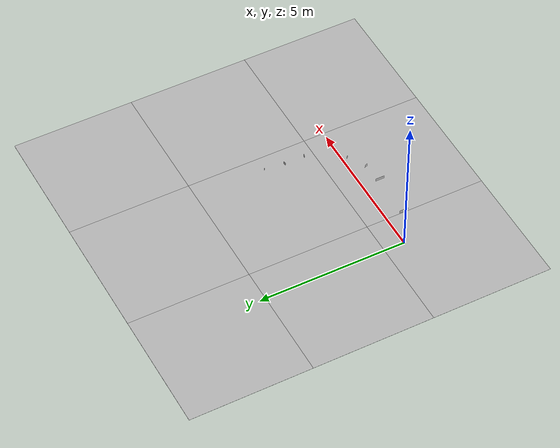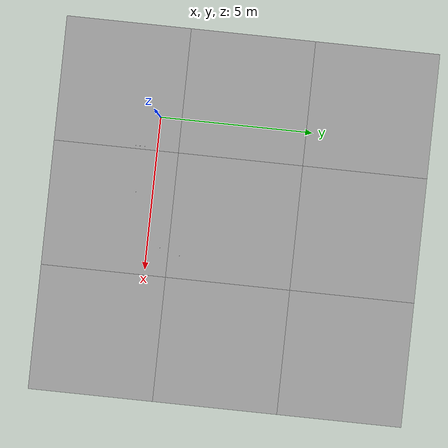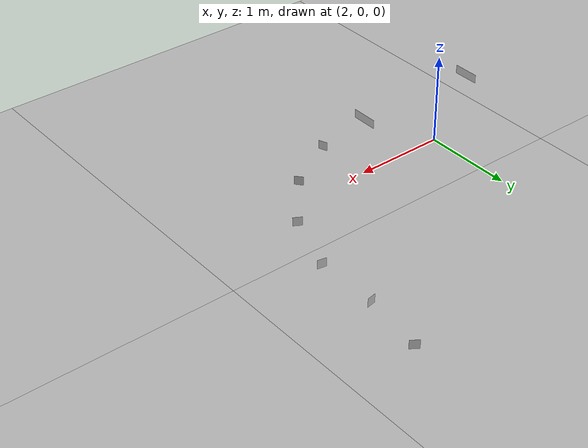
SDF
<sdf version='1.6'><world name='default'>
    <light name='sun_light' type='directional'>
      <pose frame=''>0 0 10 0 -0 0</pose>
      <diffuse>0.5 0.5 0.5 1</diffuse>
      <specular>0.1 0.1 0.1 1</specular>
      <direction>0.1 0.1 -0.9</direction>
      <attenuation>
        <range>20</range>
        <constant>0.5</constant>
        <linear>0.01</linear>
        <quadratic>0.001</quadratic>
      </attenuation>
      <cast_shadows>1</cast_shadows>
    </light>

    <model name='Tile/0-0'>
      <static>1</static>
      <link name='link'>
        <collision name='collision'>
          <geometry>
            <plane>
              <normal>0 0 1</normal>
              <size>4.096 4.096</size>
            </plane>
          </geometry>
          <surface>
            <friction>
              <ode>
                <mu>100</mu>
                <mu2>50</mu2>
              </ode>
              <torsional>
                <ode/>
              </torsional>
            </friction>
            <contact>
              <ode/>
            </contact>
            <bounce/>
          </surface>
          <max_contacts>10</max_contacts>
        </collision>
        <visual name='visual'>
          <cast_shadows>0</cast_shadows>
          <geometry>
            <plane>
              <normal>0 0 1</normal>
              <size>4.096 4.096</size>
            </plane>
          </geometry>
          <material>
            <script>
              <uri>file://materials/scripts</uri>
              <uri>file://materials/textures</uri>
              <name>Tile/d2a0822d2df9434b2a10c1df4b51959f07967b7722c4dc5c94304e16f4e1de29</name>
            </script>
          </material>
        </visual>
        <self_collide>0</self_collide>
        <enable_wind>0</enable_wind>
        <kinematic>0</kinematic>
      </link>
      <pose frame=''>-0.952 -1.3519999999999999 0 0 -0 0</pose>
    </model>

    <model name='Tile/0-1'>
      <static>1</static>
      <link name='link'>
        <collision name='collision'>
          <geometry>
            <plane>
              <normal>0 0 1</normal>
              <size>4.096 4.096</size>
            </plane>
          </geometry>
          <surface>
            <friction>
              <ode>
                <mu>100</mu>
                <mu2>50</mu2>
              </ode>
              <torsional>
                <ode/>
              </torsional>
            </friction>
            <contact>
              <ode/>
            </contact>
            <bounce/>
          </surface>
          <max_contacts>10</max_contacts>
        </collision>
        <visual name='visual'>
          <cast_shadows>0</cast_shadows>
          <geometry>
            <plane>
              <normal>0 0 1</normal>
              <size>4.096 4.096</size>
            </plane>
          </geometry>
          <material>
            <script>
              <uri>file://materials/scripts</uri>
              <uri>file://materials/textures</uri>
              <name>Tile/5eab350b8220ac9944dbdfa4ac3288c7c17e24c3bf5df0dfcf6173d64dae00a1</name>
            </script>
          </material>
        </visual>
        <self_collide>0</self_collide>
        <enable_wind>0</enable_wind>
        <kinematic>0</kinematic>
      </link>
      <pose frame=''>-0.952 2.744 0 0 -0 0</pose>
    </model>

    <model name='Tile/0-2'>
      <static>1</static>
      <link name='link'>
        <collision name='collision'>
          <geometry>
            <plane>
              <normal>0 0 1</normal>
              <size>4.096 4.096</size>
            </plane>
          </geometry>
          <surface>
            <friction>
              <ode>
                <mu>100</mu>
                <mu2>50</mu2>
              </ode>
              <torsional>
                <ode/>
              </torsional>
            </friction>
            <contact>
              <ode/>
            </contact>
            <bounce/>
          </surface>
          <max_contacts>10</max_contacts>
        </collision>
        <visual name='visual'>
          <cast_shadows>0</cast_shadows>
          <geometry>
            <plane>
              <normal>0 0 1</normal>
              <size>4.096 4.096</size>
            </plane>
          </geometry>
          <material>
            <script>
              <uri>file://materials/scripts</uri>
              <uri>file://materials/textures</uri>
              <name>Tile/5eab350b8220ac9944dbdfa4ac3288c7c17e24c3bf5df0dfcf6173d64dae00a1</name>
            </script>
          </material>
        </visual>
        <self_collide>0</self_collide>
        <enable_wind>0</enable_wind>
        <kinematic>0</kinematic>
      </link>
      <pose frame=''>-0.952 6.84 0 0 -0 0</pose>
    </model>

    <model name='Tile/1-0'>
      <static>1</static>
      <link name='link'>
        <collision name='collision'>
          <geometry>
            <plane>
              <normal>0 0 1</normal>
              <size>4.096 4.096</size>
            </plane>
          </geometry>
          <surface>
            <friction>
              <ode>
                <mu>100</mu>
                <mu2>50</mu2>
              </ode>
              <torsional>
                <ode/>
              </torsional>
            </friction>
            <contact>
              <ode/>
            </contact>
            <bounce/>
          </surface>
          <max_contacts>10</max_contacts>
        </collision>
        <visual name='visual'>
          <cast_shadows>0</cast_shadows>
          <geometry>
            <plane>
              <normal>0 0 1</normal>
              <size>4.096 4.096</size>
            </plane>
          </geometry>
          <material>
            <script>
              <uri>file://materials/scripts</uri>
              <uri>file://materials/textures</uri>
              <name>Tile/eee40ccea9311317126f079acab8a58f75d18f4e68f1ac2bab7b07feca064cc9</name>
            </script>
          </material>
        </visual>
        <self_collide>0</self_collide>
        <enable_wind>0</enable_wind>
        <kinematic>0</kinematic>
      </link>
      <pose frame=''>3.144 -1.3519999999999999 0 0 -0 0</pose>
    </model>

    <model name='Tile/1-1'>
      <static>1</static>
      <link name='link'>
        <collision name='collision'>
          <geometry>
            <plane>
              <normal>0 0 1</normal>
              <size>4.096 4.096</size>
            </plane>
          </geometry>
          <surface>
            <friction>
              <ode>
                <mu>100</mu>
                <mu2>50</mu2>
              </ode>
              <torsional>
                <ode/>
              </torsional>
            </friction>
            <contact>
              <ode/>
            </contact>
            <bounce/>
          </surface>
          <max_contacts>10</max_contacts>
        </collision>
        <visual name='visual'>
          <cast_shadows>0</cast_shadows>
          <geometry>
            <plane>
              <normal>0 0 1</normal>
              <size>4.096 4.096</size>
            </plane>
          </geometry>
          <material>
            <script>
              <uri>file://materials/scripts</uri>
              <uri>file://materials/textures</uri>
              <name>Tile/4f707bda1197f9095f4ef66584a218cdf2382df851c6f356207d1f3f003e593e</name>
            </script>
          </material>
        </visual>
        <self_collide>0</self_collide>
        <enable_wind>0</enable_wind>
        <kinematic>0</kinematic>
      </link>
      <pose frame=''>3.144 2.744 0 0 -0 0</pose>
    </model>

    <model name='Tile/1-2'>
      <static>1</static>
      <link name='link'>
        <collision name='collision'>
          <geometry>
            <plane>
              <normal>0 0 1</normal>
              <size>4.096 4.096</size>
            </plane>
          </geometry>
          <surface>
            <friction>
              <ode>
                <mu>100</mu>
                <mu2>50</mu2>
              </ode>
              <torsional>
                <ode/>
              </torsional>
            </friction>
            <contact>
              <ode/>
            </contact>
            <bounce/>
          </surface>
          <max_contacts>10</max_contacts>
        </collision>
        <visual name='visual'>
          <cast_shadows>0</cast_shadows>
          <geometry>
            <plane>
              <normal>0 0 1</normal>
              <size>4.096 4.096</size>
            </plane>
          </geometry>
          <material>
            <script>
              <uri>file://materials/scripts</uri>
              <uri>file://materials/textures</uri>
              <name>Tile/819be90ca5ff87f2ae710774ee83738a207ad9c96d62bff58fc927d57501d2e7</name>
            </script>
          </material>
        </visual>
        <self_collide>0</self_collide>
        <enable_wind>0</enable_wind>
        <kinematic>0</kinematic>
      </link>
      <pose frame=''>3.144 6.84 0 0 -0 0</pose>
    </model>

    <model name='Tile/2-0'>
      <static>1</static>
      <link name='link'>
        <collision name='collision'>
          <geometry>
            <plane>
              <normal>0 0 1</normal>
              <size>4.096 4.096</size>
            </plane>
          </geometry>
          <surface>
            <friction>
              <ode>
                <mu>100</mu>
                <mu2>50</mu2>
              </ode>
              <torsional>
                <ode/>
              </torsional>
            </friction>
            <contact>
              <ode/>
            </contact>
            <bounce/>
          </surface>
          <max_contacts>10</max_contacts>
        </collision>
        <visual name='visual'>
          <cast_shadows>0</cast_shadows>
          <geometry>
            <plane>
              <normal>0 0 1</normal>
              <size>4.096 4.096</size>
            </plane>
          </geometry>
          <material>
            <script>
              <uri>file://materials/scripts</uri>
              <uri>file://materials/textures</uri>
              <name>Tile/5eab350b8220ac9944dbdfa4ac3288c7c17e24c3bf5df0dfcf6173d64dae00a1</name>
            </script>
          </material>
        </visual>
        <self_collide>0</self_collide>
        <enable_wind>0</enable_wind>
        <kinematic>0</kinematic>
      </link>
      <pose frame=''>7.24 -1.3519999999999999 0 0 -0 0</pose>
    </model>

    <model name='Tile/2-1'>
      <static>1</static>
      <link name='link'>
        <collision name='collision'>
          <geometry>
            <plane>
              <normal>0 0 1</normal>
              <size>4.096 4.096</size>
            </plane>
          </geometry>
          <surface>
            <friction>
              <ode>
                <mu>100</mu>
                <mu2>50</mu2>
              </ode>
              <torsional>
                <ode/>
              </torsional>
            </friction>
            <contact>
              <ode/>
            </contact>
            <bounce/>
          </surface>
          <max_contacts>10</max_contacts>
        </collision>
        <visual name='visual'>
          <cast_shadows>0</cast_shadows>
          <geometry>
            <plane>
              <normal>0 0 1</normal>
              <size>4.096 4.096</size>
            </plane>
          </geometry>
          <material>
            <script>
              <uri>file://materials/scripts</uri>
              <uri>file://materials/textures</uri>
              <name>Tile/ffbfb49f96b4115cc2d15e390636a83fda1924a2f92af7b2dc761ba4a935a65f</name>
            </script>
          </material>
        </visual>
        <self_collide>0</self_collide>
        <enable_wind>0</enable_wind>
        <kinematic>0</kinematic>
      </link>
      <pose frame=''>7.24 2.744 0 0 -0 0</pose>
    </model>

    <model name='Tile/2-2'>
      <static>1</static>
      <link name='link'>
        <collision name='collision'>
          <geometry>
            <plane>
              <normal>0 0 1</normal>
              <size>4.096 4.096</size>
            </plane>
          </geometry>
          <surface>
            <friction>
              <ode>
                <mu>100</mu>
                <mu2>50</mu2>
              </ode>
              <torsional>
                <ode/>
              </torsional>
            </friction>
            <contact>
              <ode/>
            </contact>
            <bounce/>
          </surface>
          <max_contacts>10</max_contacts>
        </collision>
        <visual name='visual'>
          <cast_shadows>0</cast_shadows>
          <geometry>
            <plane>
              <normal>0 0 1</normal>
              <size>4.096 4.096</size>
            </plane>
          </geometry>
          <material>
            <script>
              <uri>file://materials/scripts</uri>
              <uri>file://materials/textures</uri>
              <name>Tile/cb56c9ae5e1c5baf166675b6b47c4197b93c99a3b395afb7ed0b8bc0931cdfdd</name>
            </script>
          </material>
        </visual>
        <self_collide>0</self_collide>
        <enable_wind>0</enable_wind>
        <kinematic>0</kinematic>
      </link>
      <pose frame=''>7.24 6.84 0 0 -0 0</pose>
    </model>

    <model name='Sign/-5'>
      <static>1</static>
      <link name='link'>
        <visual name='visual'>
          <cast_shadows>0</cast_shadows>
          <geometry>
            <plane>
              <normal>0 0 1</normal>
              <size>0.3 0.1</size>
            </plane>
          </geometry>
          <material>
            <script>
              <uri>file://materials/scripts</uri>
              <uri>file://materials/textures</uri>
              <name>Sign/stvo-625-11</name>
            </script>
          </material>
        </visual>
        <self_collide>0</self_collide>
        <enable_wind>0</enable_wind>
        <kinematic>0</kinematic>
      </link>
      <pose frame=''>1.005 -0.55 0.2 1.5707963267948966 0 4.71238898038469</pose>
    </model>

    <model name='Sign/-10'>
      <static>1</static>
      <link name='link'>
        <visual name='visual'>
          <cast_shadows>0</cast_shadows>
          <geometry>
            <plane>
              <normal>0 0 1</normal>
              <size>0.3 0.1</size>
            </plane>
          </geometry>
          <material>
            <script>
              <uri>file://materials/scripts</uri>
              <uri>file://materials/textures</uri>
              <name>Sign/stvo-625-11</name>
            </script>
          </material>
        </visual>
        <self_collide>0</self_collide>
        <enable_wind>0</enable_wind>
        <kinematic>0</kinematic>
      </link>
      <pose frame=''>2.5149999999999997 -0.55 0.2 1.5707963267948966 0 4.71238898038469</pose>
    </model>

    <model name='Sign/-15'>
      <static>1</static>
      <link name='link'>
        <visual name='visual'>
          <cast_shadows>0</cast_shadows>
          <geometry>
            <plane>
              <normal>0 0 1</normal>
              <size>0.1 0.1</size>
            </plane>
          </geometry>
          <material>
            <script>
              <uri>file://materials/scripts</uri>
              <uri>file://materials/textures</uri>
              <name>Sign/stvo-625-10</name>
            </script>
          </material>
        </visual>
        <self_collide>0</self_collide>
        <enable_wind>0</enable_wind>
        <kinematic>0</kinematic>
      </link>
      <pose frame=''>3.1916377425889833 -0.43069050981589296 0.2 1.5707963267948966 0 5.061454830783555</pose>
    </model>

    <model name='Sign/-20'>
      <static>1</static>
      <link name='link'>
        <visual name='visual'>
          <cast_shadows>0</cast_shadows>
          <geometry>
            <plane>
              <normal>0 0 1</normal>
              <size>0.1 0.1</size>
            </plane>
          </geometry>
          <material>
            <script>
              <uri>file://materials/scripts</uri>
              <uri>file://materials/textures</uri>
              <name>Sign/stvo-625-10</name>
            </script>
          </material>
        </visual>
        <self_collide>0</self_collide>
        <enable_wind>0</enable_wind>
        <kinematic>0</kinematic>
      </link>
      <pose frame=''>3.7866629873122055 -0.08715252460031775 0.2 1.5707963267948966 0 5.410520681182422</pose>
    </model>

    <model name='Sign/-25'>
      <static>1</static>
      <link name='link'>
        <visual name='visual'>
          <cast_shadows>0</cast_shadows>
          <geometry>
            <plane>
              <normal>0 0 1</normal>
              <size>0.1 0.1</size>
            </plane>
          </geometry>
          <material>
            <script>
              <uri>file://materials/scripts</uri>
              <uri>file://materials/textures</uri>
              <name>Sign/stvo-625-10</name>
            </script>
          </material>
        </visual>
        <self_collide>0</self_collide>
        <enable_wind>0</enable_wind>
        <kinematic>0</kinematic>
      </link>
      <pose frame=''>4.228306908018705 0.4391782045490447 0.2 1.5707963267948966 0 5.759586531581288</pose>
    </model>

    <model name='Sign/-30'>
      <static>1</static>
      <link name='link'>
        <visual name='visual'>
          <cast_shadows>0</cast_shadows>
          <geometry>
            <plane>
              <normal>0 0 1</normal>
              <size>0.1 0.1</size>
            </plane>
          </geometry>
          <material>
            <script>
              <uri>file://materials/scripts</uri>
              <uri>file://materials/textures</uri>
              <name>Sign/stvo-625-10</name>
            </script>
          </material>
        </visual>
        <self_collide>0</self_collide>
        <enable_wind>0</enable_wind>
        <kinematic>0</kinematic>
      </link>
      <pose frame=''>4.463300729901189 1.0848184238825138 0.2 1.5707963267948966 0 6.1086523819801535</pose>
    </model>

    <model name='Sign/-35'>
      <static>1</static>
      <link name='link'>
        <visual name='visual'>
          <cast_shadows>0</cast_shadows>
          <geometry>
            <plane>
              <normal>0 0 1</normal>
              <size>0.1 0.1</size>
            </plane>
          </geometry>
          <material>
            <script>
              <uri>file://materials/scripts</uri>
              <uri>file://materials/textures</uri>
              <name>Sign/stvo-625-10</name>
            </script>
          </material>
        </visual>
        <self_collide>0</self_collide>
        <enable_wind>0</enable_wind>
        <kinematic>0</kinematic>
      </link>
      <pose frame=''>4.463300729901189 1.771894394313664 0.2 1.5707963267948966 0 6.457718232379019</pose>
    </model>

    <model name='Sign/-48'>
      <static>1</static>
      <link name='link'>
        <visual name='visual'>
          <cast_shadows>0</cast_shadows>
          <geometry>
            <plane>
              <normal>0 0 1</normal>
              <size>0.1 0.1</size>
            </plane>
          </geometry>
          <material>
            <script>
              <uri>file://materials/scripts</uri>
              <uri>file://materials/textures</uri>
              <name>Sign/stvo-306</name>
            </script>
          </material>
        </visual>
        <self_collide>0</self_collide>
        <enable_wind>0</enable_wind>
        <kinematic>0</kinematic>
      </link>
      <pose frame=''>4.56228223921314 2.4406381768115577 0.2 1.5707963267948966 0 5.672320068981571</pose>
    </model>
    </world></sdf>
